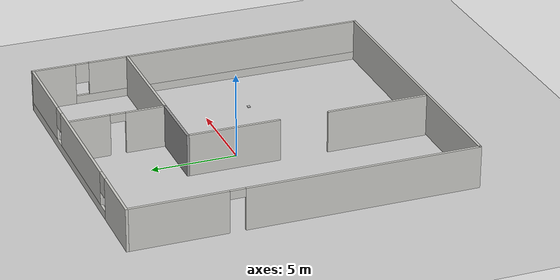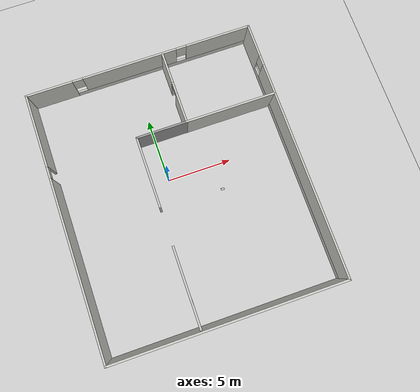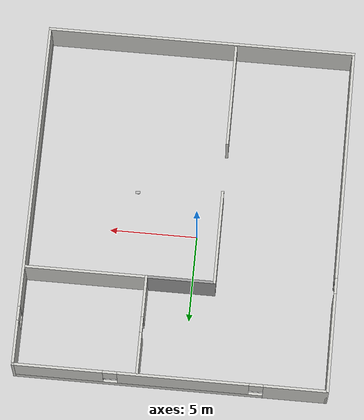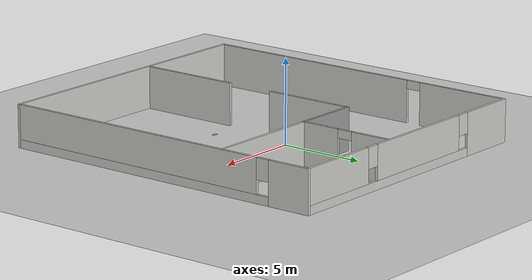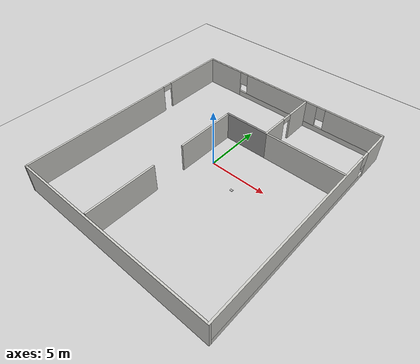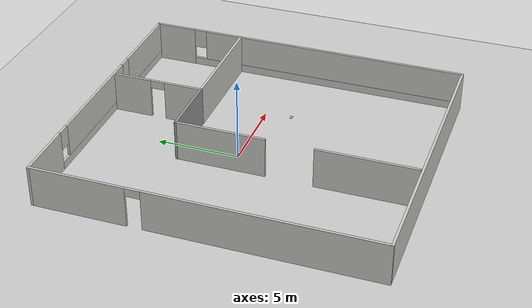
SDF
<sdf version="1.7">
 <world name="default">
  <light name="sun" type="directional">
   <pose>0 0 10 0 -0 0</pose>
   <diffuse>0.8 0.8 0.8 1</diffuse>
   <specular>0.2 0.2 0.2 1</specular>
   <attenuation>
    <range>1000</range>
    <constant>0.9</constant>
    <linear>0.01</linear>
    <quadratic>0.001</quadratic>
   </attenuation>
   <direction>-0.5 0.1 -0.9</direction>
   <spot><inner_angle>0</inner_angle><outer_angle>0</outer_angle><falloff>0</falloff></spot>
  </light>
  <model name="ground_plane">
   <static>1</static>
   <link name="link">
    <collision name="collision">
     <geometry><plane><normal>0 0 1</normal><size>100 100</size></plane></geometry>
     <surface><friction><ode><mu>100</mu><mu2>50</mu2></ode></friction></surface>
    </collision>
    <visual name="visual">
     <cast_shadows>0</cast_shadows>
     <geometry><plane><normal>0 0 1</normal><size>100 100</size></plane></geometry>
     <material>
      <script><uri>file://media/materials/scripts/gazebo.material</uri><name>Gazebo/Grey</name></script>
     </material>
    </visual>
   </link>
  </model>
  <gravity>0 0 -9.8</gravity>
  <magnetic_field>6e-06 2.3e-05 -4.2e-05</magnetic_field>
  <atmosphere type="adiabatic"/>
  <physics type="ode">
   <max_step_size>0.001</max_step_size>
   <real_time_factor>1</real_time_factor>
   <real_time_update_rate>1000</real_time_update_rate>
  </physics>
  <scene><ambient>0.4 0.4 0.4 1</ambient><background>0.7 0.7 0.7 1</background><shadows>1</shadows></scene>
  <audio><device>default</device></audio>
  <spherical_coordinates>
   <surface_model>EARTH_WGS84</surface_model>
   <latitude_deg>0</latitude_deg>
   <longitude_deg>0</longitude_deg>
   <elevation>0</elevation>
   <heading_deg>0</heading_deg>
  </spherical_coordinates>
  <model name="structure">
   <pose>0.714595 -0.80979 0 0 -0 0</pose>
   <link name="Wall_35">
    <pose>0 9.8075 0 0 -0 0</pose>
    <visual name="Wall_35_Visual_0">
     <pose>-7.0476 0 1.25 0 -0 0</pose>
     <geometry><box><size>3.65481 0.15 2.5</size></box></geometry>
     <material>
      <script><uri>file://media/materials/scripts/gazebo.material</uri><name>Gazebo/CeilingTiled</name></script>
      <ambient>1 1 1 1</ambient>
     </material>
     <meta><layer>0</layer></meta>
    </visual>
    <collision name="Wall_35_Collision_0">
     <geometry><box><size>3.65481 0.15 2.5</size></box></geometry>
     <pose>-7.0476 0 1.25 0 -0 0</pose>
    </collision>
    <visual name="Wall_35_Visual_1">
     <pose>1.8274 0 0.25 0 -0 0</pose>
     <geometry><box><size>14.0952 0.15 0.5</size></box></geometry>
     <material>
      <script><uri>file://media/materials/scripts/gazebo.material</uri><name>Gazebo/CeilingTiled</name></script>
      <ambient>1 1 1 1</ambient>
     </material>
     <meta><layer>0</layer></meta>
    </visual>
    <collision name="Wall_35_Collision_1">
     <geometry><box><size>14.0952 0.15 0.5</size></box></geometry>
     <pose>1.8274 0 0.25 0 -0 0</pose>
    </collision>
    <visual name="Wall_35_Visual_2">
     <pose>-0.727515 0 1.5 0 -0 0</pose>
     <geometry><box><size>7.38535 0.15 2</size></box></geometry>
     <material>
      <script><uri>file://media/materials/scripts/gazebo.material</uri><name>Gazebo/CeilingTiled</name></script>
      <ambient>1 1 1 1</ambient>
     </material>
     <meta><layer>0</layer></meta>
    </visual>
    <collision name="Wall_35_Collision_2">
     <geometry><box><size>7.38535 0.15 2</size></box></geometry>
     <pose>-0.727515 0 1.5 0 -0 0</pose>
    </collision>
    <visual name="Wall_35_Visual_3">
     <pose>6.32008 0 1.5 0 -0 0</pose>
     <geometry><box><size>5.10984 0.15 2</size></box></geometry>
     <material>
      <script><uri>file://media/materials/scripts/gazebo.material</uri><name>Gazebo/CeilingTiled</name></script>
      <ambient>1 1 1 1</ambient>
     </material>
     <meta><layer>0</layer></meta>
    </visual>
    <collision name="Wall_35_Collision_3">
     <geometry><box><size>5.10984 0.15 2</size></box></geometry>
     <pose>6.32008 0 1.5 0 -0 0</pose>
    </collision>
    <visual name="Wall_35_Visual_4">
     <pose>-4.82019 0 1.9 0 -0 0</pose>
     <geometry><box><size>0.8 0.15 1.2</size></box></geometry>
     <material>
      <script><uri>file://media/materials/scripts/gazebo.material</uri><name>Gazebo/CeilingTiled</name></script>
      <ambient>1 1 1 1</ambient>
     </material>
     <meta><layer>0</layer></meta>
    </visual>
    <collision name="Wall_35_Collision_4">
     <geometry><box><size>0.8 0.15 1.2</size></box></geometry>
     <pose>-4.82019 0 1.9 0 -0 0</pose>
    </collision>
    <visual name="Wall_35_Visual_5">
     <pose>3.36516 0 1.9 0 -0 0</pose>
     <geometry><box><size>0.8 0.15 1.2</size></box></geometry>
     <material>
      <script><uri>file://media/materials/scripts/gazebo.material</uri><name>Gazebo/CeilingTiled</name></script>
      <ambient>1 1 1 1</ambient>
     </material>
     <meta><layer>0</layer></meta>
    </visual>
    <collision name="Wall_35_Collision_5">
     <geometry><box><size>0.8 0.15 1.2</size></box></geometry>
     <pose>3.36516 0 1.9 0 -0 0</pose>
    </collision>
   </link>
   <link name="Wall_36">
    <pose>8.8 -0.242499 0 0 -0 -1.5708</pose>
    <visual name="Wall_36_Visual_0">
     <pose>-8.81836 0 1.25 0 -0 0</pose>
     <geometry><box><size>2.61329 0.15 2.5</size></box></geometry>
     <material>
      <script><uri>file://media/materials/scripts/gazebo.material</uri><name>Gazebo/CeilingTiled</name></script>
      <ambient>1 1 1 1</ambient>
     </material>
     <meta><layer>0</layer></meta>
    </visual>
    <collision name="Wall_36_Collision_0">
     <geometry><box><size>2.61329 0.15 2.5</size></box></geometry>
     <pose>-8.81836 0 1.25 0 -0 0</pose>
    </collision>
    <visual name="Wall_36_Visual_1">
     <pose>1.30665 0 0.25 0 -0 0</pose>
     <geometry><box><size>17.6367 0.15 0.5</size></box></geometry>
     <material>
      <script><uri>file://media/materials/scripts/gazebo.material</uri><name>Gazebo/CeilingTiled</name></script>
      <ambient>1 1 1 1</ambient>
     </material>
     <meta><layer>0</layer></meta>
    </visual>
    <collision name="Wall_36_Collision_1">
     <geometry><box><size>17.6367 0.15 0.5</size></box></geometry>
     <pose>1.30665 0 0.25 0 -0 0</pose>
    </collision>
    <visual name="Wall_36_Visual_2">
     <pose>1.70664 0 1.5 0 -0 0</pose>
     <geometry><box><size>16.8367 0.15 2</size></box></geometry>
     <material>
      <script><uri>file://media/materials/scripts/gazebo.material</uri><name>Gazebo/CeilingTiled</name></script>
      <ambient>1 1 1 1</ambient>
     </material>
     <meta><layer>0</layer></meta>
    </visual>
    <collision name="Wall_36_Collision_2">
     <geometry><box><size>16.8367 0.15 2</size></box></geometry>
     <pose>1.70664 0 1.5 0 -0 0</pose>
    </collision>
    <visual name="Wall_36_Visual_3">
     <pose>-7.11171 0 1.9 0 -0 0</pose>
     <geometry><box><size>0.8 0.15 1.2</size></box></geometry>
     <material>
      <script><uri>file://media/materials/scripts/gazebo.material</uri><name>Gazebo/CeilingTiled</name></script>
      <ambient>1 1 1 1</ambient>
     </material>
     <meta><layer>0</layer></meta>
    </visual>
    <collision name="Wall_36_Collision_3">
     <geometry><box><size>0.8 0.15 1.2</size></box></geometry>
     <pose>-7.11171 0 1.9 0 -0 0</pose>
    </collision>
   </link>
   <link name="Wall_37">
    <collision name="Wall_37_Collision">
     <geometry><box><size>17.75 0.15 2.5</size></box></geometry>
     <pose>0 0 1.25 0 -0 0</pose>
    </collision>
    <visual name="Wall_37_Visual">
     <pose>0 0 1.25 0 -0 0</pose>
     <geometry><box><size>17.75 0.15 2.5</size></box></geometry>
     <material>
      <script><uri>file://media/materials/scripts/gazebo.material</uri><name>Gazebo/CeilingTiled</name></script>
      <ambient>1 1 1 1</ambient>
     </material>
     <meta><layer>0</layer></meta>
    </visual>
    <pose>0 -10.2925 0 0 -0 3.14159</pose>
   </link>
   <link name="Wall_43">
    <pose>-8.8 -0.242499 0 0 -0 -1.5708</pose>
    <visual name="Wall_43_Visual_0">
     <pose>-7.25012 0 1.25 0 -0 0</pose>
     <geometry><box><size>5.74975 0.15 2.5</size></box></geometry>
     <material>
      <script><uri>file://media/materials/scripts/gazebo.material</uri><name>Gazebo/CeilingTiled</name></script>
      <ambient>1 1 1 1</ambient>
     </material>
     <meta><layer>0</layer></meta>
    </visual>
    <collision name="Wall_43_Collision_0">
     <geometry><box><size>5.74975 0.15 2.5</size></box></geometry>
     <pose>-7.25012 0 1.25 0 -0 0</pose>
    </collision>
    <visual name="Wall_43_Visual_1">
     <pose>3.32488 0 1.25 0 -0 0</pose>
     <geometry><box><size>13.6002 0.15 2.5</size></box></geometry>
     <material>
      <script><uri>file://media/materials/scripts/gazebo.material</uri><name>Gazebo/CeilingTiled</name></script>
      <ambient>1 1 1 1</ambient>
     </material>
     <meta><layer>0</layer></meta>
    </visual>
    <collision name="Wall_43_Collision_1">
     <geometry><box><size>13.6002 0.15 2.5</size></box></geometry>
     <pose>3.32488 0 1.25 0 -0 0</pose>
    </collision>
    <visual name="Wall_43_Visual_2">
     <pose>-3.92525 0 2.25 0 -0 0</pose>
     <geometry><box><size>0.9 0.15 0.5</size></box></geometry>
     <material>
      <script><uri>file://media/materials/scripts/gazebo.material</uri><name>Gazebo/CeilingTiled</name></script>
      <ambient>1 1 1 1</ambient>
     </material>
     <meta><layer>0</layer></meta>
    </visual>
    <collision name="Wall_43_Collision_2">
     <geometry><box><size>0.9 0.15 0.5</size></box></geometry>
     <pose>-3.92525 0 2.25 0 -0 0</pose>
    </collision>
   </link>
   <link name="Wall_45">
    <collision name="Wall_45_Collision">
     <geometry><box><size>7 0.15 2.5</size></box></geometry>
     <pose>0 0 1.25 0 -0 0</pose>
    </collision>
    <visual name="Wall_45_Visual">
     <pose>0 0 1.25 0 -0 0</pose>
     <geometry><box><size>7 0.15 2.5</size></box></geometry>
     <material>
      <script><uri>file://media/materials/scripts/gazebo.material</uri><name>Gazebo/CeilingTiled</name></script>
      <ambient>1 1 1 1</ambient>
     </material>
     <meta><layer>0</layer></meta>
    </visual>
    <pose>5.28304 4.09884 0 0 -0 3.14159</pose>
   </link>
   <link name="Wall_46">
    <pose>1.85804 6.89884 0 0 -0 1.5708</pose>
    <visual name="Wall_46_Visual_0">
     <pose>-1.66678 0 1.25 0 -0 0</pose>
     <geometry><box><size>2.41643 0.15 2.5</size></box></geometry>
     <material>
      <script><uri>file://media/materials/scripts/gazebo.material</uri><name>Gazebo/CeilingTiled</name></script>
      <ambient>1 1 1 1</ambient>
     </material>
     <meta><layer>0</layer></meta>
    </visual>
    <collision name="Wall_46_Collision_0">
     <geometry><box><size>2.41643 0.15 2.5</size></box></geometry>
     <pose>-1.66678 0 1.25 0 -0 0</pose>
    </collision>
    <visual name="Wall_46_Visual_1">
     <pose>1.65822 0 1.25 0 -0 0</pose>
     <geometry><box><size>2.43357 0.15 2.5</size></box></geometry>
     <material>
      <script><uri>file://media/materials/scripts/gazebo.material</uri><name>Gazebo/CeilingTiled</name></script>
      <ambient>1 1 1 1</ambient>
     </material>
     <meta><layer>0</layer></meta>
    </visual>
    <collision name="Wall_46_Collision_1">
     <geometry><box><size>2.43357 0.15 2.5</size></box></geometry>
     <pose>1.65822 0 1.25 0 -0 0</pose>
    </collision>
    <visual name="Wall_46_Visual_2">
     <pose>-0.008565 0 2.25 0 -0 0</pose>
     <geometry><box><size>0.9 0.15 0.5</size></box></geometry>
     <material>
      <script><uri>file://media/materials/scripts/gazebo.material</uri><name>Gazebo/CeilingTiled</name></script>
      <ambient>1 1 1 1</ambient>
     </material>
     <meta><layer>0</layer></meta>
    </visual>
    <collision name="Wall_46_Collision_2">
     <geometry><box><size>0.9 0.15 0.5</size></box></geometry>
     <pose>-0.008565 0 2.25 0 -0 0</pose>
    </collision>
   </link>
   <link name="Wall_48">
    <collision name="Wall_48_Collision">
     <geometry><box><size>4 0.15 2.5</size></box></geometry>
     <pose>0 0 1.25 0 -0 0</pose>
    </collision>
    <visual name="Wall_48_Visual">
     <pose>0 0 1.25 0 -0 0</pose>
     <geometry><box><size>4 0.15 2.5</size></box></geometry>
     <material>
      <script><uri>file://media/materials/scripts/gazebo.material</uri><name>Gazebo/Grey</name></script>
      <ambient>1 1 1 1</ambient>
     </material>
     <meta><layer>0</layer></meta>
    </visual>
    <pose>-0.066965 4.09884 0 0 -0 3.14159</pose>
   </link>
   <link name="Wall_51">
    <collision name="Wall_51_Collision">
     <geometry><box><size>5.5 0.15 2.5</size></box></geometry>
     <pose>0 0 1.25 0 -0 0</pose>
    </collision>
    <visual name="Wall_51_Visual">
     <pose>0 0 1.25 0 -0 0</pose>
     <geometry><box><size>5.5 0.15 2.5</size></box></geometry>
     <material>
      <script><uri>file://media/materials/scripts/gazebo.material</uri><name>Gazebo/CeilingTiled</name></script>
      <ambient>1 1 1 1</ambient>
     </material>
     <meta><layer>0</layer></meta>
    </visual>
    <pose>-1.99196 1.42384 0 0 -0 -1.5708</pose>
   </link>
   <link name="Wall_53">
    <collision name="Wall_53_Collision">
     <geometry><box><size>6 0.15 2.5</size></box></geometry>
     <pose>0 0 1.25 0 -0 0</pose>
    </collision>
    <visual name="Wall_53_Visual">
     <pose>0 0 1.25 0 -0 0</pose>
     <geometry><box><size>6 0.15 2.5</size></box></geometry>
     <material>
      <script><uri>file://media/materials/scripts/gazebo.material</uri><name>Gazebo/CeilingTiled</name></script>
      <ambient>1 1 1 1</ambient>
     </material>
     <meta><layer>0</layer></meta>
    </visual>
    <pose>-2.00319 -7.17171 0 0 -0 -1.5708</pose>
   </link>
   <static>1</static>
  </model>
  <model name="book_10">
   <link name="cover">
    <pose>0 -0.000108 0.015405 0 -0 0</pose>
    <visual name="visual">
     <geometry><box><size>0.245 0.16 0.03</size></box></geometry>
     <material>
      <script>
       <uri>model://book_10/materials/scripts</uri>
       <uri>model://book_10/materials/textures</uri>
       <name>book_10</name>
      </script>
     </material>
    </visual>
    <collision name="collision"><geometry><box><size>0.245 0.16 0.03</size></box></geometry></collision>
   </link>
   <link name="page">
    <pose>0 0.000608 0.015405 0 -0 0</pose>
    <visual name="visual">
     <geometry><box><size>0.24502 0.15862 0.028</size></box></geometry>
     <material>
      <lighting>1</lighting>
      <ambient>1 1 1 1</ambient>
      <diffuse>1 1 1 1</diffuse>
      <specular>0.01 0.01 0.01 1</specular>
      <emissive>0 0 0 1</emissive>
      <shader type="vertex"><normal_map>__default__</normal_map></shader>
     </material>
    </visual>
    <collision name="collision"><geometry><box><size>0.245 0.16 0.03</size></box></geometry></collision>
   </link>
   <static>1</static>
   <pose>3.58587 -2.09143 1.03184 0 -0 0</pose>
  </model>
 </world>
</sdf>
